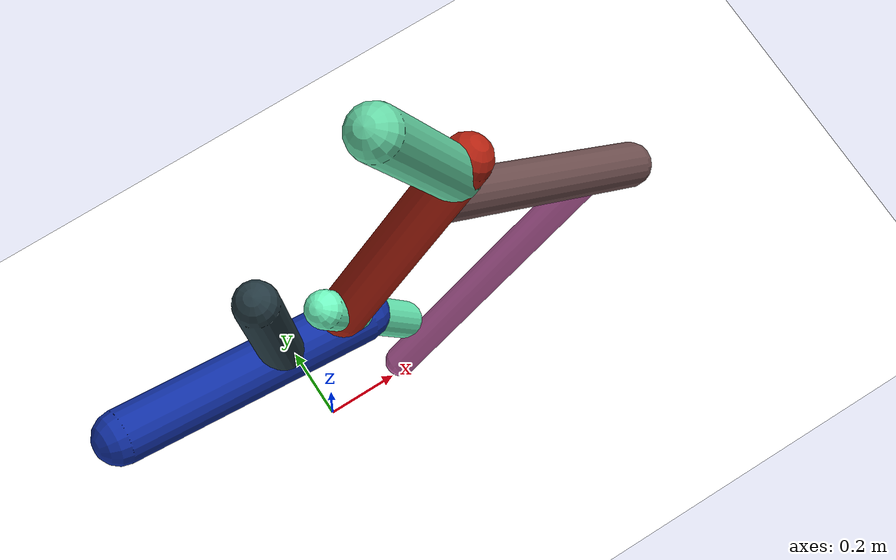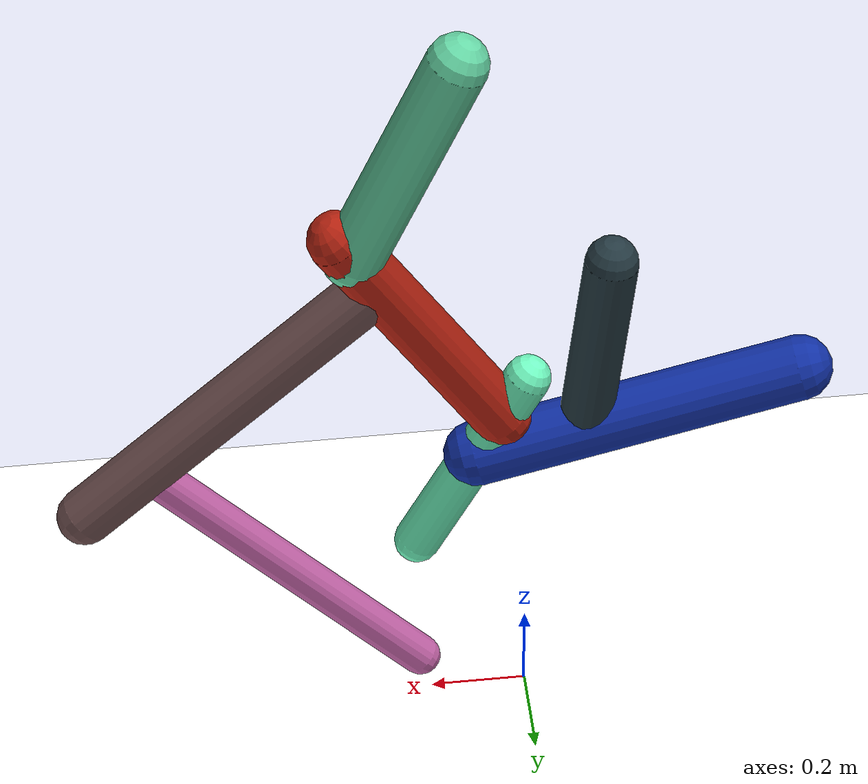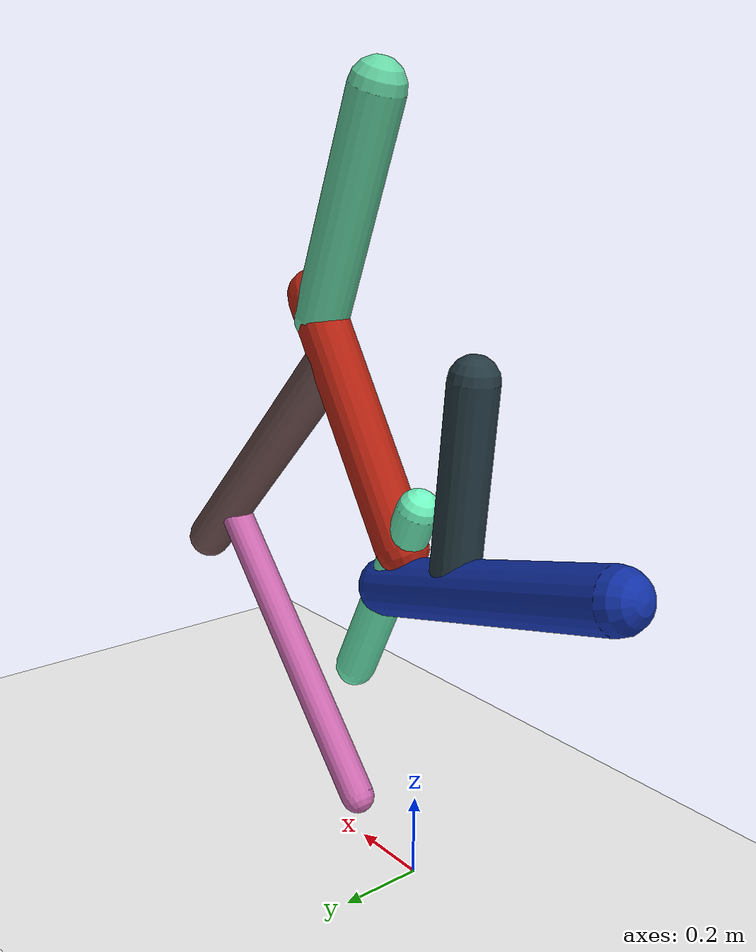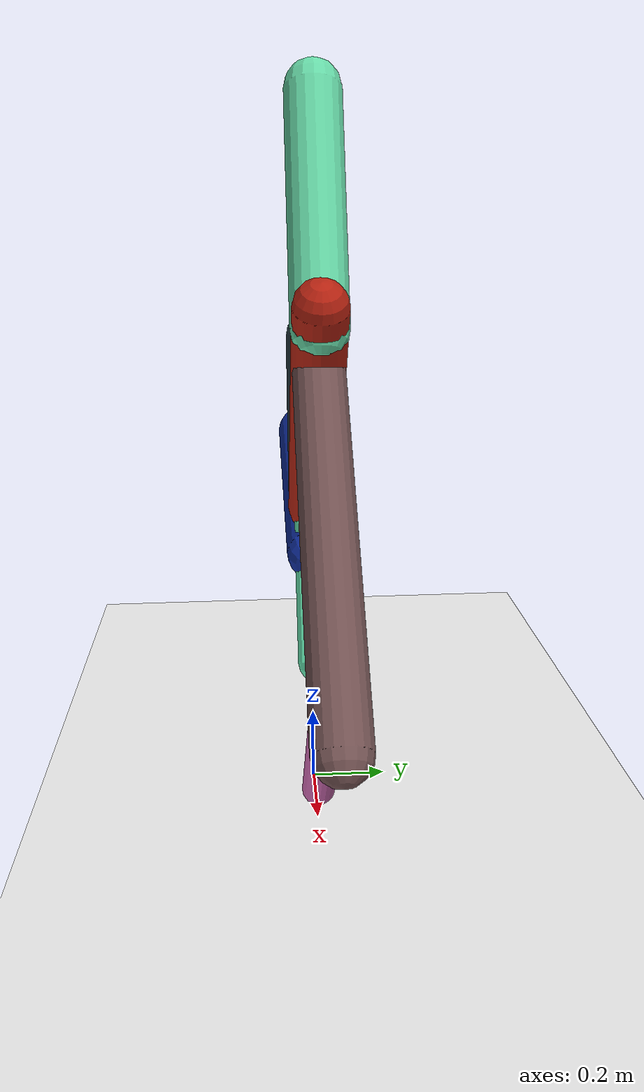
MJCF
<mujoco model="morphology">
  <option timestep="0.01"/>
  <default>
    <default class="/"/>
    <default class="0/"/>
    <default class="0/1/"/>
    <default class="0/1/2/"/>
    <default class="0/1/3/"/>
    <default class="0/1/3/4/"/>
    <default class="0/5/"/>
    <default class="0/5/6/"/>
  </default>
  <asset>
    <texture name="texplane" type="2d" builtin="checker" rgb1="0.10000000000000001 0.20000000000000001 0.29999999999999999" rgb2="0.20000000000000001 0.29999999999999999 0.40000000000000002" width="300" height="300"/>
    <material name="MatPlane" class="/" texture="texplane" texrepeat="20 20" specular="1" shininess="1" reflectance="0.5"/>
  </asset>
  <worldbody>
    <light name="//unnamed_light_0" class="/" directional="true" pos="0 0 1.5" dir="0 0 -1.3" cutoff="100" exponent="1" diffuse="1 1 1" specular="0.10000000000000001 0.10000000000000001 0.10000000000000001"/>
    <geom name="ground" class="/" type="plane" size="15 15 0.5" material="MatPlane" rgba="1 1 1 1"/>
    <site name="body" class="/" size="9.9999999999999995e-07 9.9999999999999995e-07 9.9999999999999995e-07" pos="0 0 0.92080066204071043"/>
    <body pos="0 0 0.92080066204071043" name="0/">
      <joint name="0/rootx/" class="/" type="slide" axis="1 0 0" limited="false" stiffness="0" armature="0" damping="0"/>
      <joint name="0/rootz/" class="/" type="slide" axis="0 0 1" limited="false" stiffness="0" armature="0" damping="0"/>
      <joint name="0/rooty/" class="/" type="hinge" axis="0 1 0" limited="false" stiffness="0" armature="0" damping="0"/>
      <geom name="0/geom" class="0/" type="capsule" contype="1" conaffinity="1" condim="3" size="0.049296943366294144" rgba="0.44552611761008609 0.99499270748358049 0.76610826299592627 1" friction="0.59999999999999998 0.10000000000000001 0.10000000000000001" fromto="0 0 0 0.23105305201306803 0 -0.45718592608621339"/>
      <site name="0/end0" class="0/" size="0.0050000000000000001" pos="0.23105305201306803 0 -0.45718592608621339"/>
      <site name="0/attach1" class="0/" size="9.9999999999999995e-07 9.9999999999999995e-07 9.9999999999999995e-07" pos="0.052969783951569441 0 -0.10481159854627344"/>
      <body pos="0.052969783951569441 0 -0.10481159854627344" name="0/1/">
        <joint name="0/1/joint/" class="0/" type="hinge" axis="0 1 0" limited="true" range="-66.514332071797611 66.514332071797611"/>
        <geom name="0/1/geom" class="0/1/" type="capsule" contype="1" conaffinity="1" condim="3" size="0.062998743580791855" rgba="0.71304694326611195 0.13643214363274225 0.067931526053032432 1" friction="0.59999999999999998 0.10000000000000001 0.10000000000000001" fromto="0 0 0 0.33854690052076086 0 0.54250606683349067"/>
        <site name="0/1/end1" class="0/1/" size="0.0050000000000000001" pos="0.33854690052076086 0 0.54250606683349067"/>
        <site name="0/1/attach2" class="0/1/" size="9.9999999999999995e-07 9.9999999999999995e-07 9.9999999999999995e-07" pos="0.30712384950889232 0 0.4921520515223638"/>
        <body pos="0.30712384950889232 0 0.4921520515223638" name="0/1/2/">
          <joint name="0/1/2/joint/" class="0/1/" type="hinge" axis="0 1 0" limited="true" range="-68.412503481604489 68.412503481604489"/>
          <geom name="0/1/2/geom" class="0/1/2/" type="capsule" contype="1" conaffinity="1" condim="3" size="0.06581531404298871" rgba="0.40029344206383788 0.84879718309013308 0.6532413167724429 1" friction="0.59999999999999998 0.10000000000000001 0.10000000000000001" fromto="0 0 0 -0.21196812409302901 0 0.50395790735176216"/>
          <site name="0/1/2/end2" class="0/1/2/" size="0.0050000000000000001" pos="-0.21196812409302901 0 0.50395790735176216"/>
        </body>
        <site name="0/1/attach3" class="0/1/" size="9.9999999999999995e-07 9.9999999999999995e-07 9.9999999999999995e-07" pos="0.25491666445071304 0 0.40849240323494967"/>
        <body pos="0.25491666445071304 0 0.40849240323494967" name="0/1/3/">
          <geom name="0/1/3/geom" class="0/1/3/" type="capsule" contype="1" conaffinity="1" condim="3" size="0.059990979016493237" rgba="0.44433141444119773 0.31964686374520601 0.31969972337243235 1" friction="0.59999999999999998 0.10000000000000001 0.10000000000000001" fromto="0 0 0 0.62184004937222204 0 -0.60572821776739683"/>
          <site name="0/1/3/end3" class="0/1/3/" size="0.0050000000000000001" pos="0.62184004937222204 0 -0.60572821776739683"/>
          <site name="0/1/3/attach4" class="0/1/3/" size="9.9999999999999995e-07 9.9999999999999995e-07 9.9999999999999995e-07" pos="0.49249035494438348 0 -0.47972996475421287"/>
          <body pos="0.49249035494438348 0 -0.47972996475421287" name="0/1/3/4/">
            <joint name="0/1/3/4/joint/" class="0/1/3/" type="hinge" axis="0 1 0" limited="true" range="-67.25673726658944 67.25673726658944"/>
            <geom name="0/1/3/4/geom" class="0/1/3/4/" type="capsule" contype="1" conaffinity="1" condim="3" size="0.04283451983228076" rgba="0.79430296447630089 0.40464410166932019 0.68120965166177516 1" friction="0.59999999999999998 0.10000000000000001 0.10000000000000001" fromto="0 0 0 -0.57517055634997649 0 -0.64475150233598921"/>
            <site name="0/1/3/4/end4" class="0/1/3/4/" size="0.0050000000000000001" pos="-0.57517055634997649 0 -0.64475150233598921"/>
          </body>
        </body>
      </body>
      <site name="0/attach5" class="0/" size="9.9999999999999995e-07 9.9999999999999995e-07 9.9999999999999995e-07" pos="0.10661816823218608 0 -0.21096594724094267"/>
      <body pos="0.10661816823218608 0 -0.21096594724094267" name="0/5/">
        <joint name="0/5/joint/" class="0/" type="hinge" axis="0 1 0" limited="true" range="-44.01245918341781 44.01245918341781"/>
        <geom name="0/5/geom" class="0/5/" type="capsule" contype="1" conaffinity="1" condim="3" size="0.069488348714009565" rgba="0.069020719112252937 0.19212044990190691 0.65116970416076225 1" friction="0.59999999999999998 0.10000000000000001 0.10000000000000001" fromto="0 0 0 -0.67694582728963015 0 0.17370768839109751"/>
        <site name="0/5/end5" class="0/5/" size="0.0050000000000000001" pos="-0.67694582728963015 0 0.17370768839109751"/>
        <site name="0/5/attach6" class="0/5/" size="9.9999999999999995e-07 9.9999999999999995e-07 9.9999999999999995e-07" pos="-0.22734333655598629 0 0.058337438347726749"/>
        <body pos="-0.22734333655598629 0 0.058337438347726749" name="0/5/6/">
          <joint name="0/5/6/joint/" class="0/5/" type="hinge" axis="0 1 0" limited="true" range="-43.838036224755896 43.838036224755896"/>
          <geom name="0/5/6/geom" class="0/5/6/" type="capsule" contype="1" conaffinity="1" condim="3" size="0.056454374706530058" rgba="0.14613827083520459 0.22835914593210305 0.2599316251105217 1" friction="0.59999999999999998 0.10000000000000001 0.10000000000000001" fromto="0 0 0 -0.048811499707599681 0 0.46524222205145538"/>
          <site name="0/5/6/end6" class="0/5/6/" size="0.0050000000000000001" pos="-0.048811499707599681 0 0.46524222205145538"/>
        </body>
      </body>
      <camera name="0/side" class="0/" mode="trackcom" pos="0.40000000000000002 -4 0.20000000000000001" quat="0.70699999999999996 0.70699999999999996 0 0"/>
    </body>
  </worldbody>
  <actuator>
    <motor name="0/1/motor" class="0/1/" ctrllimited="true" ctrlrange="-1 1" gear="77" joint="0/1/joint/"/>
    <motor name="0/1/2/motor" class="0/1/2/" ctrllimited="true" ctrlrange="-1 1" gear="88" joint="0/1/2/joint/"/>
    <motor name="0/1/3/4/motor" class="0/1/3/4/" ctrllimited="true" ctrlrange="-1 1" gear="74" joint="0/1/3/4/joint/"/>
    <motor name="0/5/motor" class="0/5/" ctrllimited="true" ctrlrange="-1 1" gear="77" joint="0/5/joint/"/>
    <motor name="0/5/6/motor" class="0/5/6/" ctrllimited="true" ctrlrange="-1 1" gear="85" joint="0/5/6/joint/"/>
  </actuator>
  <sensor>
    <subtreelinvel name="velocity" body="0/"/>
  </sensor>
</mujoco>
